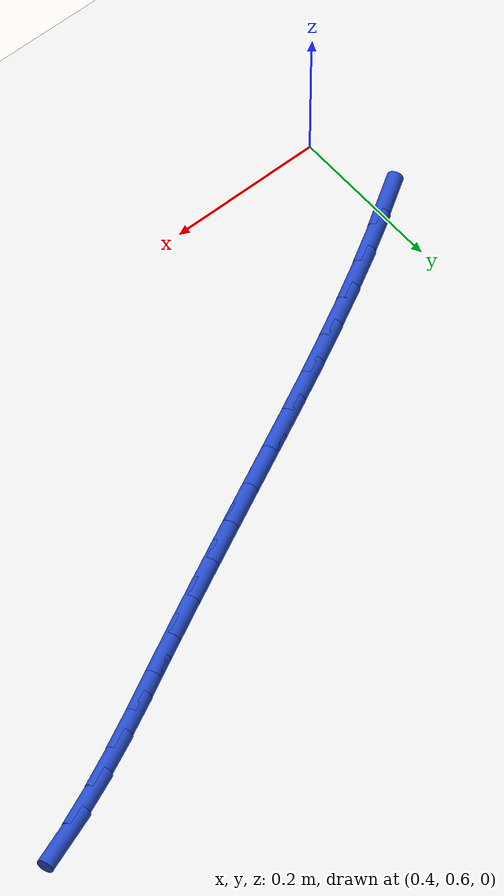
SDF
<sdf version="1.6">
 <world name="default">
  <model name="ground_plane">
   <static>1</static>
   <link name="link">
    <collision name="collision">
     <geometry><plane><normal>0 0 1</normal><size>100 100</size></plane></geometry>
     <surface><friction><ode><mu>100</mu><mu2>50</mu2></ode></friction></surface>
    </collision>
    <visual name="visual">
     <cast_shadows>0</cast_shadows>
     <geometry><plane><normal>0 0 1</normal><size>100 100</size></plane></geometry>
     <material>
      <script><uri>file://media/materials/scripts/gazebo.material</uri><name>Gazebo/WhiteGlow</name></script>
     </material>
    </visual>
   </link>
  </model>
  <model name="line">
   <link name="link_16">
    <pose>0.38990938959532184 0.7240372804619511 0.01 0 1.57 0.5675481863297864</pose>
    <collision name="collision">
     <geometry><cylinder><radius>0.01</radius><length>0.08</length></cylinder></geometry>
    </collision>
    <visual name="visual">
     <material>
      <script><name>Gazebo/Blue</name><uri>file://media/materials/scripts/gazebo.material</uri></script>
     </material>
     <geometry><cylinder><radius>0.01</radius><length>0.08</length></cylinder></geometry>
    </visual>
   </link>
   <link name="link_17">
    <pose>0.4368280883710341 0.7539486478582047 0.01 0 1.57 0.5375421657477882</pose>
    <collision name="collision">
     <geometry><cylinder><radius>0.01</radius><length>0.08</length></cylinder></geometry>
    </collision>
    <visual name="visual">
     <material>
      <script><name>Gazebo/Blue</name><uri>file://media/materials/scripts/gazebo.material</uri></script>
     </material>
     <geometry><cylinder><radius>0.01</radius><length>0.08</length></cylinder></geometry>
    </visual>
   </link>
   <link name="link_18">
    <pose>0.48492478590949595 0.7826187794388908 0.01 0 1.57 0.5128489066966759</pose>
    <collision name="collision">
     <geometry><cylinder><radius>0.01</radius><length>0.08</length></cylinder></geometry>
    </collision>
    <visual name="visual">
     <material>
      <script><name>Gazebo/Blue</name><uri>file://media/materials/scripts/gazebo.material</uri></script>
     </material>
     <geometry><cylinder><radius>0.01</radius><length>0.08</length></cylinder></geometry>
    </visual>
   </link>
   <link name="link_19">
    <pose>0.5339041595475238 0.810199308381639 0.01 0 1.57 0.49320260165248964</pose>
    <collision name="collision">
     <geometry><cylinder><radius>0.01</radius><length>0.08</length></cylinder></geometry>
    </collision>
    <visual name="visual">
     <material>
      <script><name>Gazebo/Blue</name><uri>file://media/materials/scripts/gazebo.material</uri></script>
     </material>
     <geometry><cylinder><radius>0.01</radius><length>0.08</length></cylinder></geometry>
    </visual>
   </link>
   <link name="link_20">
    <pose>0.5834708866219338 0.8368418678640781 0.01 0 1.57 0.478408290178742</pose>
    <collision name="collision">
     <geometry><cylinder><radius>0.01</radius><length>0.08</length></cylinder></geometry>
    </collision>
    <visual name="visual">
     <material>
      <script><name>Gazebo/Blue</name><uri>file://media/materials/scripts/gazebo.material</uri></script>
     </material>
     <geometry><cylinder><radius>0.01</radius><length>0.08</length></cylinder></geometry>
    </visual>
   </link>
   <link name="link_21">
    <pose>0.6333296444695424 0.8626980910638377 0.01 0 1.57 0.46835070967737275</pose>
    <collision name="collision">
     <geometry><cylinder><radius>0.01</radius><length>0.08</length></cylinder></geometry>
    </collision>
    <visual name="visual">
     <material>
      <script><name>Gazebo/Blue</name><uri>file://media/materials/scripts/gazebo.material</uri></script>
     </material>
     <geometry><cylinder><radius>0.01</radius><length>0.08</length></cylinder></geometry>
    </visual>
   </link>
   <link name="link_22">
    <pose>0.6831851104271658 0.8879196111585468 0.01 0 1.57 0.4630003723994389</pose>
    <collision name="collision">
     <geometry><cylinder><radius>0.01</radius><length>0.08</length></cylinder></geometry>
    </collision>
    <visual name="visual">
     <material>
      <script><name>Gazebo/Blue</name><uri>file://media/materials/scripts/gazebo.material</uri></script>
     </material>
     <geometry><cylinder><radius>0.01</radius><length>0.08</length></cylinder></geometry>
    </visual>
   </link>
   <link name="link_23">
    <pose>0.7327421398714512 0.9126580449418787 0.01 0 1.57 0.46160993479304074</pose>
    <collision name="collision">
     <geometry><cylinder><radius>0.01</radius><length>0.08</length></cylinder></geometry>
    </collision>
    <visual name="visual">
     <material>
      <script><name>Gazebo/Blue</name><uri>file://media/materials/scripts/gazebo.material</uri></script>
     </material>
     <geometry><cylinder><radius>0.01</radius><length>0.08</length></cylinder></geometry>
    </visual>
   </link>
   <link name="link_24">
    <pose>0.7817901166250218 0.937057230553153 0.01 0 1.57 0.4621584505705805</pose>
    <collision name="collision">
     <geometry><cylinder><radius>0.01</radius><length>0.08</length></cylinder></geometry>
    </collision>
    <visual name="visual">
     <material>
      <script><name>Gazebo/Blue</name><uri>file://media/materials/scripts/gazebo.material</uri></script>
     </material>
     <geometry><cylinder><radius>0.01</radius><length>0.08</length></cylinder></geometry>
    </visual>
   </link>
   <link name="link_25">
    <pose>0.8303378811273123 0.9612408108335463 0.01 0 1.57 0.46435616678150154</pose>
    <collision name="collision">
     <geometry><cylinder><radius>0.01</radius><length>0.08</length></cylinder></geometry>
    </collision>
    <visual name="visual">
     <material>
      <script><name>Gazebo/Blue</name><uri>file://media/materials/scripts/gazebo.material</uri></script>
     </material>
     <geometry><cylinder><radius>0.01</radius><length>0.08</length></cylinder></geometry>
    </visual>
   </link>
   <link name="link_26">
    <pose>0.8784294274430855 0.9853291936434235 0.01 0 1.57 0.4682332799169837</pose>
    <collision name="collision">
     <geometry><cylinder><radius>0.01</radius><length>0.08</length></cylinder></geometry>
    </collision>
    <visual name="visual">
     <material>
      <script><name>Gazebo/Blue</name><uri>file://media/materials/scripts/gazebo.material</uri></script>
     </material>
     <geometry><cylinder><radius>0.01</radius><length>0.08</length></cylinder></geometry>
    </visual>
   </link>
   <link name="link_27">
    <pose>0.9261087496371038 1.0094427868431497 0.01 0 1.57 0.4738030185185685</pose>
    <collision name="collision">
     <geometry><cylinder><radius>0.01</radius><length>0.08</length></cylinder></geometry>
    </collision>
    <visual name="visual">
     <material>
      <script><name>Gazebo/Blue</name><uri>file://media/materials/scripts/gazebo.material</uri></script>
     </material>
     <geometry><cylinder><radius>0.01</radius><length>0.08</length></cylinder></geometry>
    </visual>
   </link>
   <link name="link_28">
    <pose>0.9734198417741309 1.033701998293091 0.01 0 1.57 0.48000184230579357</pose>
    <collision name="collision">
     <geometry><cylinder><radius>0.01</radius><length>0.08</length></cylinder></geometry>
    </collision>
    <visual name="visual">
     <material>
      <script><name>Gazebo/Blue</name><uri>file://media/materials/scripts/gazebo.material</uri></script>
     </material>
     <geometry><cylinder><radius>0.01</radius><length>0.08</length></cylinder></geometry>
    </visual>
   </link>
   <link name="link_29">
    <pose>1.0204329722901042 1.0581776539468464 0.01 0 1.57 0.47834226492540677</pose>
    <collision name="collision">
     <geometry><cylinder><radius>0.01</radius><length>0.08</length></cylinder></geometry>
    </collision>
    <visual name="visual">
     <material>
      <script><name>Gazebo/Blue</name><uri>file://media/materials/scripts/gazebo.material</uri></script>
     </material>
     <geometry><cylinder><radius>0.01</radius><length>0.08</length></cylinder></geometry>
    </visual>
   </link>
   <link name="link_30">
    <pose>1.0674280937597411 1.0825448884834374 0.01 0 1.57 0.4647573889563969</pose>
    <collision name="collision">
     <geometry><cylinder><radius>0.01</radius><length>0.08</length></cylinder></geometry>
    </collision>
    <visual name="visual">
     <material>
      <script><name>Gazebo/Blue</name><uri>file://media/materials/scripts/gazebo.material</uri></script>
     </material>
     <geometry><cylinder><radius>0.01</radius><length>0.08</length></cylinder></geometry>
    </visual>
   </link>
   <link name="link_31">
    <pose>1.114785567364077 1.1062893572552939 0.01 0 1.57 0.43934025167964447</pose>
    <collision name="collision">
     <geometry><cylinder><radius>0.01</radius><length>0.08</length></cylinder></geometry>
    </collision>
    <visual name="visual">
     <material>
      <script><name>Gazebo/Blue</name><uri>file://media/materials/scripts/gazebo.material</uri></script>
     </material>
     <geometry><cylinder><radius>0.01</radius><length>0.08</length></cylinder></geometry>
    </visual>
   </link>
   <link name="link_32">
    <pose>1.162886383175069 1.128895528845775 0.01 0 1.57 0.4024152046235309</pose>
    <collision name="collision">
     <geometry><cylinder><radius>0.01</radius><length>0.08</length></cylinder></geometry>
    </collision>
    <visual name="visual">
     <material>
      <script><name>Gazebo/Blue</name><uri>file://media/materials/scripts/gazebo.material</uri></script>
     </material>
     <geometry><cylinder><radius>0.01</radius><length>0.08</length></cylinder></geometry>
    </visual>
   </link>
   <link name="link_33">
    <pose>1.2121115312646746 1.1498478718382399 0.01 0 1.57 0.35460025331843054</pose>
    <collision name="collision">
     <geometry><cylinder><radius>0.01</radius><length>0.08</length></cylinder></geometry>
    </collision>
    <visual name="visual">
     <material>
      <script><name>Gazebo/Blue</name><uri>file://media/materials/scripts/gazebo.material</uri></script>
     </material>
     <geometry><cylinder><radius>0.01</radius><length>0.08</length></cylinder></geometry>
    </visual>
   </link>
  </model>
 </world>
</sdf>
